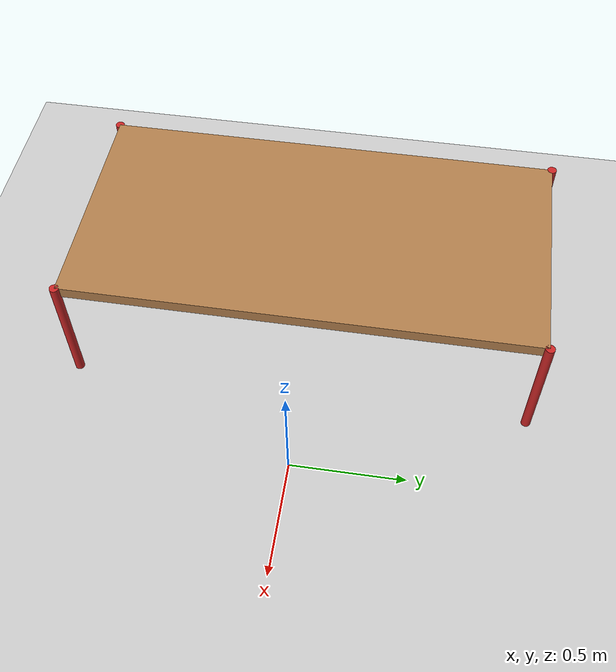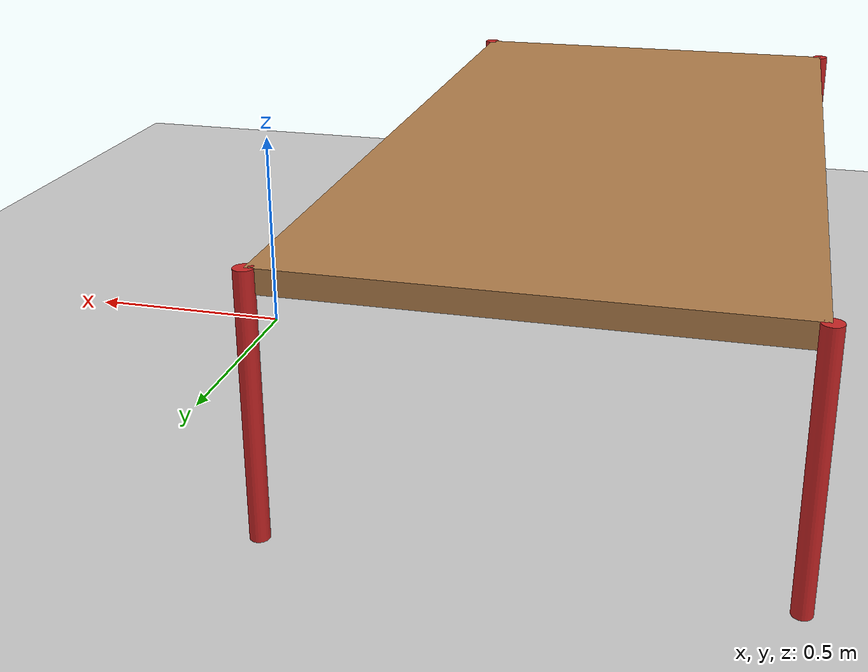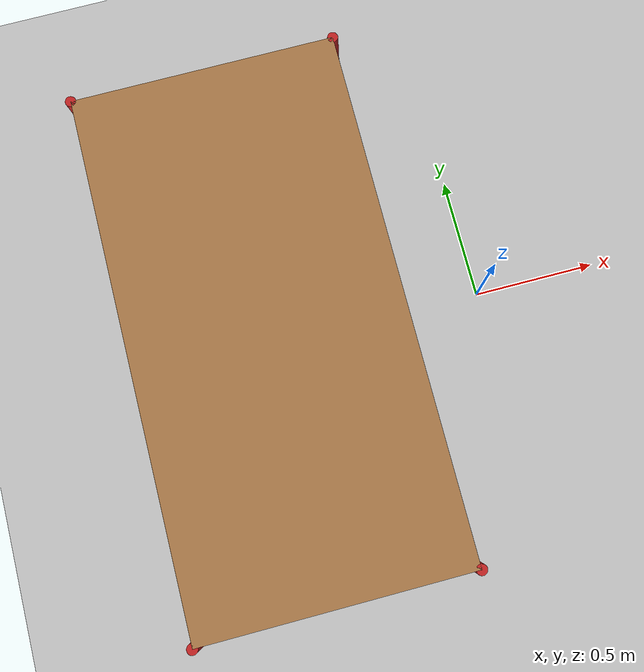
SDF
<sdf version="1.5">
 <world name="default">
  <light name="sun" type="directional">
   <pose>0 0 10 0 -0 0</pose>
   <diffuse>0.8 0.8 0.8 1</diffuse>
   <specular>0.2 0.2 0.2 1</specular>
   <attenuation>
    <range>1000</range>
    <constant>0.9</constant>
    <linear>0.01</linear>
    <quadratic>0.001</quadratic>
   </attenuation>
   <direction>-0.5 0.1 -0.9</direction>
  </light>
  <model name="ground_plane">
   <static>1</static>
   <link name="link">
    <collision name="collision">
     <geometry><plane><normal>0 0 1</normal><size>100 100</size></plane></geometry>
     <surface><friction><ode><mu>100</mu><mu2>50</mu2></ode></friction></surface>
    </collision>
    <visual name="visual">
     <cast_shadows>0</cast_shadows>
     <geometry><plane><normal>0 0 1</normal><size>100 100</size></plane></geometry>
     <material>
      <script><uri>file://media/materials/scripts/gazebo.material</uri><name>Gazebo/Grey</name></script>
     </material>
    </visual>
    <velocity_decay><linear>0</linear><angular>0</angular></velocity_decay>
   </link>
  </model>
  <physics name="default_physics" default="0" type="ode">
   <max_step_size>0.001</max_step_size>
   <real_time_factor>1</real_time_factor>
   <real_time_update_rate>1000</real_time_update_rate>
   <gravity>0 0 -9.8</gravity>
   <magnetic_field>5.5645e-06 2.28758e-05 -4.23884e-05</magnetic_field>
  </physics>
  <scene><ambient>0.4 0.4 0.4 1</ambient><background>0.7 0.7 0.7 1</background><shadows>1</shadows></scene>
  <spherical_coordinates>
   <surface_model>EARTH_WGS84</surface_model>
   <latitude_deg>0</latitude_deg>
   <longitude_deg>0</longitude_deg>
   <elevation>0</elevation>
   <heading_deg>0</heading_deg>
  </spherical_coordinates>
  <model name="table">
   <link name="table_top_link">
    <inertial>
     <pose>0 0 0.325 0 -0 0</pose>
     <mass>5</mass>
     <inertia><ixx>5.45</ixx><ixy>0</ixy><ixz>0</ixz><iyy>2.45</iyy><iyz>0</iyz><izz>6.04</izz></inertia>
    </inertial>
    <collision name="table_top_link_collision">
     <pose>0 0 0.525 0 -0 0</pose>
     <geometry><box><size>1 2 0.05</size></box></geometry>
     <surface>
      <contact><ode><kp>1e+06</kp><kd>1</kd></ode></contact>
      <friction><ode><mu>50</mu><mu2>50</mu2></ode></friction>
     </surface>
    </collision>
    <collision name="table_top_link_collision_leg1_link">
     <pose>0.5 1 0.275 0 -0 0</pose>
     <geometry><cylinder><length>0.55</length><radius>0.02</radius></cylinder></geometry>
     <surface>
      <contact><ode><kp>1e+06</kp><kd>1</kd></ode></contact>
      <friction><ode><mu>50</mu><mu2>50</mu2></ode></friction>
     </surface>
     <surface>
      <contact><ode><kp>1e+07</kp><kd>1</kd></ode></contact>
      <friction><ode><mu>1000</mu><mu2>1000</mu2></ode></friction>
     </surface>
    </collision>
    <collision name="table_top_link_collision_leg2_link">
     <pose>-0.5 1 0.275 0 -0 0</pose>
     <geometry><cylinder><length>0.55</length><radius>0.02</radius></cylinder></geometry>
     <surface>
      <contact><ode><kp>1e+06</kp><kd>1</kd></ode></contact>
      <friction><ode><mu>50</mu><mu2>50</mu2></ode></friction>
     </surface>
     <surface>
      <contact><ode><kp>1e+07</kp><kd>1</kd></ode></contact>
      <friction><ode><mu>1000</mu><mu2>1000</mu2></ode></friction>
     </surface>
    </collision>
    <collision name="table_top_link_collision_leg3_link">
     <pose>0.5 -1 0.275 0 -0 0</pose>
     <geometry><cylinder><length>0.55</length><radius>0.02</radius></cylinder></geometry>
     <surface>
      <contact><ode><kp>1e+06</kp><kd>1</kd></ode></contact>
      <friction><ode><mu>50</mu><mu2>50</mu2></ode></friction>
     </surface>
     <surface>
      <contact><ode><kp>1e+07</kp><kd>1</kd></ode></contact>
      <friction><ode><mu>1000</mu><mu2>1000</mu2></ode></friction>
     </surface>
    </collision>
    <collision name="table_top_link_collision_leg4_link">
     <pose>-0.5 -1 0.275 0 -0 0</pose>
     <geometry><cylinder><length>0.55</length><radius>0.02</radius></cylinder></geometry>
     <surface>
      <contact><ode><kp>1e+06</kp><kd>1</kd></ode></contact>
      <friction><ode><mu>50</mu><mu2>50</mu2></ode></friction>
     </surface>
     <surface>
      <contact><ode><kp>1e+07</kp><kd>1</kd></ode></contact>
      <friction><ode><mu>1000</mu><mu2>1000</mu2></ode></friction>
     </surface>
    </collision>
    <visual name="table_top_link_visual">
     <pose>0 0 0.525 0 -0 0</pose>
     <geometry><box><size>1 2 0.05</size></box></geometry>
     <material><script><name>Gazebo/Wood</name><uri>__default__</uri></script></material>
    </visual>
    <visual name="table_top_link_visual_leg1_link">
     <pose>0.5 1 0.275 0 -0 0</pose>
     <geometry><cylinder><length>0.55</length><radius>0.02</radius></cylinder></geometry>
     <material><script><name>Gazebo/Red</name><uri>__default__</uri></script></material>
    </visual>
    <visual name="table_top_link_visual_leg2_link">
     <pose>-0.5 1 0.275 0 -0 0</pose>
     <geometry><cylinder><length>0.55</length><radius>0.02</radius></cylinder></geometry>
     <material><script><name>Gazebo/Red</name><uri>__default__</uri></script></material>
    </visual>
    <visual name="table_top_link_visual_leg3_link">
     <pose>0.5 -1 0.275 0 -0 0</pose>
     <geometry><cylinder><length>0.55</length><radius>0.02</radius></cylinder></geometry>
     <material><script><name>Gazebo/Red</name><uri>__default__</uri></script></material>
    </visual>
    <visual name="table_top_link_visual_leg4_link">
     <pose>-0.5 -1 0.275 0 -0 0</pose>
     <geometry><cylinder><length>0.55</length><radius>0.02</radius></cylinder></geometry>
     <material><script><name>Gazebo/Red</name><uri>__default__</uri></script></material>
    </visual>
    <velocity_decay><linear>0</linear><angular>0</angular></velocity_decay>
    <velocity_decay><linear>0</linear><angular>0</angular></velocity_decay>
    <velocity_decay><linear>0</linear><angular>0</angular></velocity_decay>
    <velocity_decay><linear>0</linear><angular>0</angular></velocity_decay>
    <velocity_decay><linear>0</linear><angular>0</angular></velocity_decay>
    <self_collide>1</self_collide>
   </link>
   <static>1</static>
   <pose>-0.854111 -0.016412 0.01 0 -0 0</pose>
  </model>
 </world>
</sdf>
